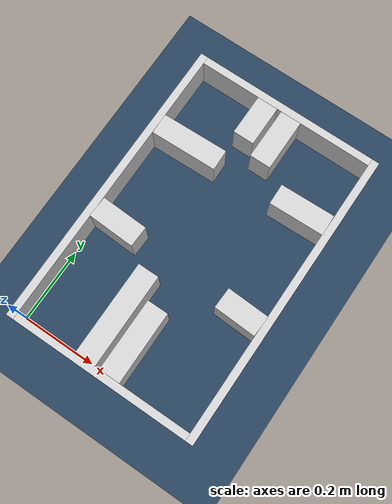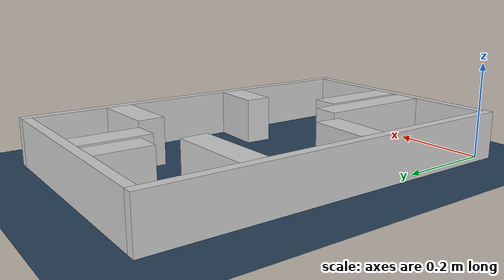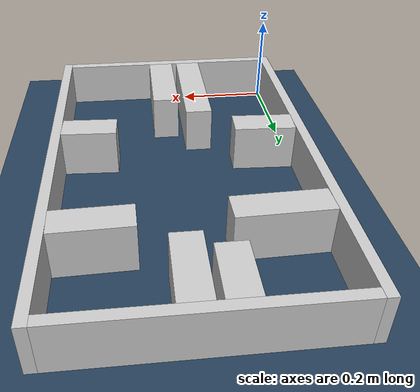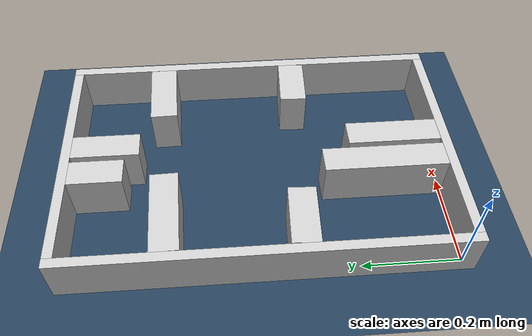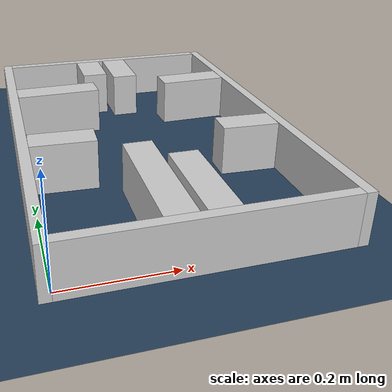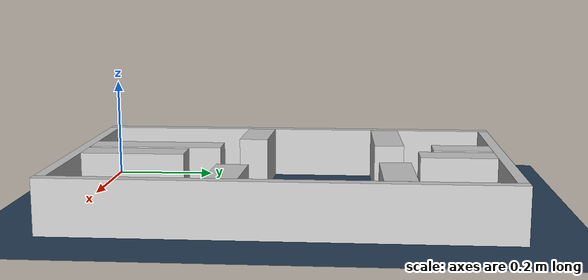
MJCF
<?xml version="1.0" ?>
<mujoco model="generated_real_template">
  <compiler angle="degree"/>
  <option timestep="0.002" integrator="implicitfast" iterations="100" cone="elliptic"/>
  <default>
    <geom density="1"/>
  </default>
  <asset>
    <texture builtin="gradient" height="3072" rgb1="0.3 0.5 0.7" rgb2="0 0 0" type="skybox" width="512"/>
    <texture builtin="checker" height="300" mark="edge" markrgb="0.8 0.8 0.8" name="groundplane" rgb1="0.2 0.3 0.4" rgb2="0.1 0.2 0.3" type="2d" width="300"/>
    <material name="groundplane" reflectance="0.2" texrepeat="5 5" texture="groundplane" texuniform="true"/>
  </asset>
  <worldbody>
    <light dir="0 0 -1" directional="true" pos="0 0 1.5"/>
    <geom name="floor" type="plane" condim="4" friction="0.5 0.005 0.001" material="groundplane" size="0 0 0.05"/>
    <body name="walls">
      <geom name="wall_boundary_left" type="box" condim="4" friction="1.0 0.005 0.0001" rgba="0.8 0.8 0.8 1" pos="-0.010000 0.387500 0.050000" euler="0 0 0.000000" size="0.010000 0.407500 0.050000"/>
      <geom name="wall_boundary_right" type="box" condim="4" friction="1.0 0.005 0.0001" rgba="0.8 0.8 0.8 1" pos="0.500000 0.387500 0.050000" euler="0 0 0.000000" size="0.010000 0.407500 0.050000"/>
      <geom name="wall_boundary_bottom" type="box" condim="4" friction="1.0 0.005 0.0001" rgba="0.8 0.8 0.8 1" pos="0.245000 -0.010000 0.050000" euler="0 0 0.000000" size="0.245000 0.010000 0.050000"/>
      <geom name="wall_boundary_top" type="box" condim="4" friction="1.0 0.005 0.0001" rgba="0.8 0.8 0.8 1" pos="0.245000 0.785000 0.050000" euler="0 0 0.000000" size="0.245000 0.010000 0.050000"/>
      <geom name="wall_inner_1_1" type="box" condim="4" friction="1.0 0.005 0.0001" rgba="0.8 0.8 0.8 1" pos="0.195179 0.127547 0.050000" euler="0 0 90.000000" size="0.127547 0.028500 0.050000"/>
      <geom name="wall_inner_1_2" type="box" condim="4" friction="1.0 0.005 0.0001" rgba="0.8 0.8 0.8 1" pos="0.195179 0.719172 0.050000" euler="0 0 90.000000" size="0.055828 0.028500 0.050000"/>
      <geom name="wall_inner_2_1" type="box" condim="4" friction="1.0 0.005 0.0001" rgba="0.8 0.8 0.8 1" pos="0.415779 0.587484 0.050000" euler="0 0 -178.422503" size="0.074249 0.028500 0.050000"/>
      <geom name="wall_inner_2_2" type="box" condim="4" friction="1.0 0.005 0.0001" rgba="0.8 0.8 0.8 1" pos="0.090318 0.578521 0.050000" euler="0 0 -178.422503" size="0.090352 0.028500 0.050000"/>
      <geom name="wall_inner_3_1" type="box" condim="4" friction="1.0 0.005 0.0001" rgba="0.8 0.8 0.8 1" pos="0.063914 0.311301 0.050000" euler="0 0 -2.369355" size="0.063968 0.028500 0.050000"/>
      <geom name="wall_inner_3_2" type="box" condim="4" friction="1.0 0.005 0.0001" rgba="0.8 0.8 0.8 1" pos="0.432810 0.296038 0.050000" euler="0 0 -2.369355" size="0.057238 0.028500 0.050000"/>
      <geom name="wall_inner_4_1" type="box" condim="4" friction="1.0 0.005 0.0001" rgba="0.8 0.8 0.8 1" pos="0.264009 0.097672 0.050000" euler="0 0 90.000000" size="0.097672 0.028500 0.050000"/>
      <geom name="wall_inner_4_2" type="box" condim="4" friction="1.0 0.005 0.0001" rgba="0.8 0.8 0.8 1" pos="0.264009 0.704362 0.050000" euler="0 0 90.000000" size="0.070638 0.028500 0.050000"/>
    </body>
  </worldbody>
</mujoco>
